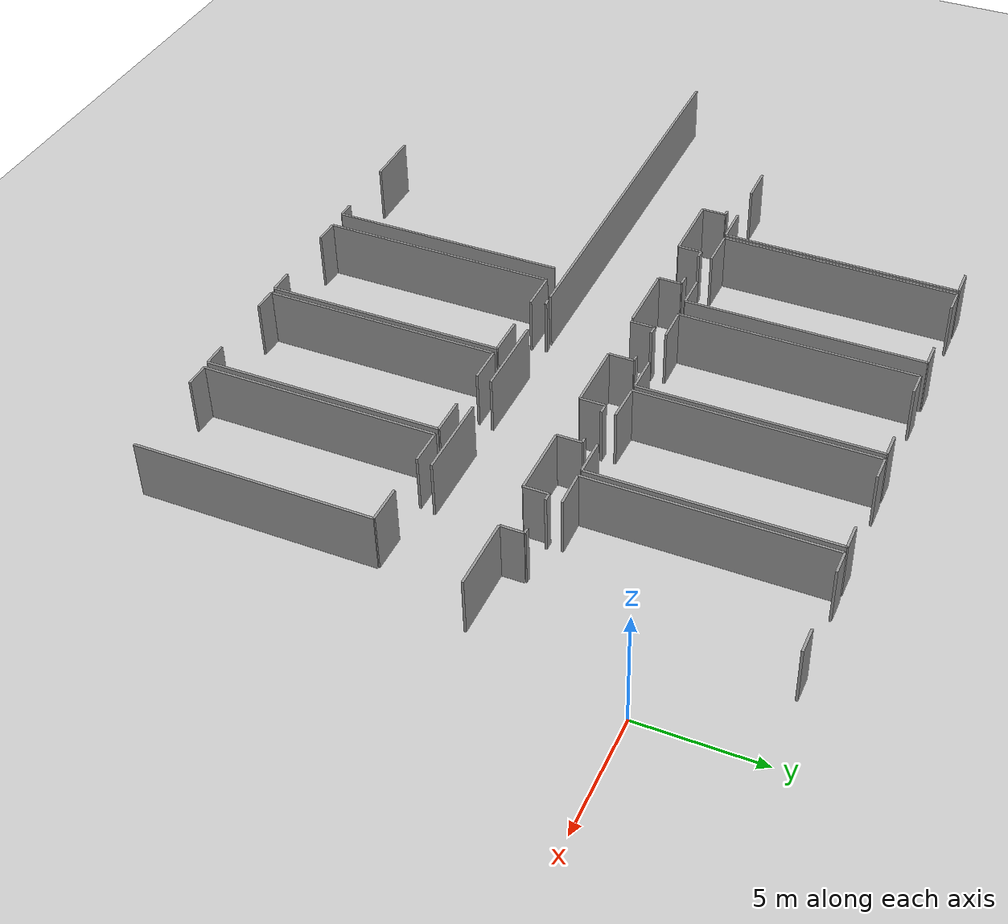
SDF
<sdf version="1.6">
 <world name="default">
  <model name="ground_plane">
   <static>1</static>
   <link name="link">
    <collision name="collision">
     <geometry><plane><normal>0 0 1</normal><size>100 100</size></plane></geometry>
     <surface><friction><ode><mu>100</mu><mu2>50</mu2></ode></friction></surface>
    </collision>
    <visual name="visual">
     <cast_shadows>0</cast_shadows>
     <geometry><plane><normal>0 0 1</normal><size>100 100</size></plane></geometry>
     <material>
      <script><uri>file://media/materials/scripts/gazebo.material</uri><name>Gazebo/Grey</name></script>
     </material>
    </visual>
   </link>
  </model>
  <model name="50055640">
   <static>1</static>
   <link name="Wall_68">
    <collision name="Wall_68_Collision">
     <geometry><box><size>0.287958779633 0.1 2.5</size></box></geometry>
     <pose>0.143979389817 0 1.25 0 0 0</pose>
    </collision>
    <visual name="Wall_68_Visual">
     <pose>0.143979389817 0 1.25 0 0 0</pose>
     <geometry><box><size>0.287958779633 0.1 2.5</size></box></geometry>
     <material>
      <script><uri>file://media/materials/scripts/gazebo.material</uri><name>Gazebo/Grey</name></script>
      <ambient>1 1 1 1</ambient>
     </material>
    </visual>
    <pose>44.7276511498 -26.5159906594 0 0 0 0.0</pose>
   </link>
   <link name="Wall_69">
    <collision name="Wall_69_Collision">
     <geometry><box><size>1.03101680288 0.1 2.5</size></box></geometry>
     <pose>0.515508401442 0 1.25 0 0 0</pose>
    </collision>
    <visual name="Wall_69_Visual">
     <pose>0.515508401442 0 1.25 0 0 0</pose>
     <geometry><box><size>1.03101680288 0.1 2.5</size></box></geometry>
     <material>
      <script><uri>file://media/materials/scripts/gazebo.material</uri><name>Gazebo/Grey</name></script>
      <ambient>1 1 1 1</ambient>
     </material>
    </visual>
    <pose>45.0156099294 -26.5159906594 0 0 0 -1.57079632679</pose>
   </link>
   <link name="Wall_70">
    <collision name="Wall_70_Collision">
     <geometry><box><size>2.96525204325 0.1 2.5</size></box></geometry>
     <pose>1.48262602163 0 1.25 0 0 0</pose>
    </collision>
    <visual name="Wall_70_Visual">
     <pose>1.48262602163 0 1.25 0 0 0</pose>
     <geometry><box><size>2.96525204325 0.1 2.5</size></box></geometry>
     <material>
      <script><uri>file://media/materials/scripts/gazebo.material</uri><name>Gazebo/Grey</name></script>
      <ambient>1 1 1 1</ambient>
     </material>
    </visual>
    <pose>45.0156099294 -27.5470074623 0 0 0 0.0</pose>
   </link>
   <link name="Wall_71">
    <collision name="Wall_71_Collision">
     <geometry><box><size>0.998020204071 0.1 2.5</size></box></geometry>
     <pose>0.499010102036 0 1.25 0 0 0</pose>
    </collision>
    <visual name="Wall_71_Visual">
     <pose>0.499010102036 0 1.25 0 0 0</pose>
     <geometry><box><size>0.998020204071 0.1 2.5</size></box></geometry>
     <material>
      <script><uri>file://media/materials/scripts/gazebo.material</uri><name>Gazebo/Grey</name></script>
      <ambient>1 1 1 1</ambient>
     </material>
    </visual>
    <pose>47.9808619727 -27.5470074623 0 0 0 1.57079632679</pose>
   </link>
   <link name="Wall_72">
    <collision name="Wall_72_Collision">
     <geometry><box><size>0.326285598254 0.1 2.5</size></box></geometry>
     <pose>0.163142799127 0 1.25 0 0 0</pose>
    </collision>
    <visual name="Wall_72_Visual">
     <pose>0.163142799127 0 1.25 0 0 0</pose>
     <geometry><box><size>0.326285598254 0.1 2.5</size></box></geometry>
     <material>
      <script><uri>file://media/materials/scripts/gazebo.material</uri><name>Gazebo/Grey</name></script>
      <ambient>1 1 1 1</ambient>
     </material>
    </visual>
    <pose>47.9808619727 -26.5489872582 0 0 0 0.0</pose>
   </link>
   <link name="Wall_73">
    <collision name="Wall_73_Collision">
     <geometry><box><size>0.479846692726 0.1 2.5</size></box></geometry>
     <pose>0.239923346363 0 1.25 0 0 0</pose>
    </collision>
    <visual name="Wall_73_Visual">
     <pose>0.239923346363 0 1.25 0 0 0</pose>
     <geometry><box><size>0.479846692726 0.1 2.5</size></box></geometry>
     <material>
      <script><uri>file://media/materials/scripts/gazebo.material</uri><name>Gazebo/Grey</name></script>
      <ambient>1 1 1 1</ambient>
     </material>
    </visual>
    <pose>49.8904766739 -26.5489872582 0 0 0 0.0</pose>
   </link>
   <link name="Wall_74">
    <collision name="Wall_74_Collision">
     <geometry><box><size>0.988375044418 0.1 2.5</size></box></geometry>
     <pose>0.494187522209 0 1.25 0 0 0</pose>
    </collision>
    <visual name="Wall_74_Visual">
     <pose>0.494187522209 0 1.25 0 0 0</pose>
     <geometry><box><size>0.988375044418 0.1 2.5</size></box></geometry>
     <material>
      <script><uri>file://media/materials/scripts/gazebo.material</uri><name>Gazebo/Grey</name></script>
      <ambient>1 1 1 1</ambient>
     </material>
    </visual>
    <pose>50.3703233667 -26.5489872582 0 0 0 -1.57079632679</pose>
   </link>
   <link name="Wall_75">
    <collision name="Wall_75_Collision">
     <geometry><box><size>2.92679831464 0.1 2.5</size></box></geometry>
     <pose>1.46339915732 0 1.25 0 0 0</pose>
    </collision>
    <visual name="Wall_75_Visual">
     <pose>1.46339915732 0 1.25 0 0 0</pose>
     <geometry><box><size>2.92679831464 0.1 2.5</size></box></geometry>
     <material>
      <script><uri>file://media/materials/scripts/gazebo.material</uri><name>Gazebo/Grey</name></script>
      <ambient>1 1 1 1</ambient>
     </material>
    </visual>
    <pose>50.3703233667 -27.5373623027 0 0 0 0.0</pose>
   </link>
   <link name="Wall_76">
    <collision name="Wall_76_Collision">
     <geometry><box><size>17.3403472257 0.1 2.5</size></box></geometry>
     <pose>8.67017361287 0 1.25 0 0 0</pose>
    </collision>
    <visual name="Wall_76_Visual">
     <pose>8.67017361287 0 1.25 0 0 0</pose>
     <geometry><box><size>17.3403472257 0.1 2.5</size></box></geometry>
     <material>
      <script><uri>file://media/materials/scripts/gazebo.material</uri><name>Gazebo/Grey</name></script>
      <ambient>1 1 1 1</ambient>
     </material>
    </visual>
    <pose>53.2971216813 -31.1334839332 0 0 0 3.14159265359</pose>
   </link>
   <link name="Wall_114">
    <collision name="Wall_114_Collision">
     <geometry><box><size>1.15932280826 0.1 2.5</size></box></geometry>
     <pose>0.579661404132 0 1.25 0 0 0</pose>
    </collision>
    <visual name="Wall_114_Visual">
     <pose>0.579661404132 0 1.25 0 0 0</pose>
     <geometry><box><size>1.15932280826 0.1 2.5</size></box></geometry>
     <material>
      <script><uri>file://media/materials/scripts/gazebo.material</uri><name>Gazebo/Grey</name></script>
      <ambient>1 1 1 1</ambient>
     </material>
    </visual>
    <pose>45.27882126 -15.9630438093 0 0 0 0.0</pose>
   </link>
   <link name="Wall_115">
    <collision name="Wall_115_Collision">
     <geometry><box><size>10.0395959186 0.1 2.5</size></box></geometry>
     <pose>5.01979795929 0 1.25 0 0 0</pose>
    </collision>
    <visual name="Wall_115_Visual">
     <pose>5.01979795929 0 1.25 0 0 0</pose>
     <geometry><box><size>10.0395959186 0.1 2.5</size></box></geometry>
     <material>
      <script><uri>file://media/materials/scripts/gazebo.material</uri><name>Gazebo/Grey</name></script>
      <ambient>1 1 1 1</ambient>
     </material>
    </visual>
    <pose>46.4381440682 -15.9630438093 0 0 0 -1.57079632679</pose>
   </link>
   <link name="Wall_116">
    <collision name="Wall_116_Collision">
     <geometry><box><size>1.56632316361 0.1 2.5</size></box></geometry>
     <pose>0.783161581806 0 1.25 0 0 0</pose>
    </collision>
    <visual name="Wall_116_Visual">
     <pose>0.783161581806 0 1.25 0 0 0</pose>
     <geometry><box><size>1.56632316361 0.1 2.5</size></box></geometry>
     <material>
      <script><uri>file://media/materials/scripts/gazebo.material</uri><name>Gazebo/Grey</name></script>
      <ambient>1 1 1 1</ambient>
     </material>
    </visual>
    <pose>46.4381440682 -26.0026397279 0 0 0 3.14159265359</pose>
   </link>
   <link name="Wall_117">
    <collision name="Wall_117_Collision">
     <geometry><box><size>1.56304024327 0.1 2.5</size></box></geometry>
     <pose>0.781520121636 0 1.25 0 0 0</pose>
    </collision>
    <visual name="Wall_117_Visual">
     <pose>0.781520121636 0 1.25 0 0 0</pose>
     <geometry><box><size>1.56304024327 0.1 2.5</size></box></geometry>
     <material>
      <script><uri>file://media/materials/scripts/gazebo.material</uri><name>Gazebo/Grey</name></script>
      <ambient>1 1 1 1</ambient>
     </material>
    </visual>
    <pose>43.084293619 -26.0026397279 0 0 0 -3.13696456062</pose>
   </link>
   <link name="Wall_118">
    <collision name="Wall_118_Collision">
     <geometry><box><size>10.0123102696 0.1 2.5</size></box></geometry>
     <pose>5.00615513478 0 1.25 0 0 0</pose>
    </collision>
    <visual name="Wall_118_Visual">
     <pose>5.00615513478 0 1.25 0 0 0</pose>
     <geometry><box><size>10.0123102696 0.1 2.5</size></box></geometry>
     <material>
      <script><uri>file://media/materials/scripts/gazebo.material</uri><name>Gazebo/Grey</name></script>
      <ambient>1 1 1 1</ambient>
     </material>
    </visual>
    <pose>46.6565561704 -25.9828417686 0 0 0 1.57079632679</pose>
   </link>
   <link name="Wall_119">
    <collision name="Wall_119_Collision">
     <geometry><box><size>0.973653484948 0.1 2.5</size></box></geometry>
     <pose>0.486826742474 0 1.25 0 0 0</pose>
    </collision>
    <visual name="Wall_119_Visual">
     <pose>0.486826742474 0 1.25 0 0 0</pose>
     <geometry><box><size>0.973653484948 0.1 2.5</size></box></geometry>
     <material>
      <script><uri>file://media/materials/scripts/gazebo.material</uri><name>Gazebo/Grey</name></script>
      <ambient>1 1 1 1</ambient>
     </material>
    </visual>
    <pose>46.6565561704 -15.9705314991 0 0 0 0.0</pose>
   </link>
   <link name="Wall_120">
    <collision name="Wall_120_Collision">
     <geometry><box><size>1.00398497386 0.1 2.5</size></box></geometry>
     <pose>0.501992486928 0 1.25 0 0 0</pose>
    </collision>
    <visual name="Wall_120_Visual">
     <pose>0.501992486928 0 1.25 0 0 0</pose>
     <geometry><box><size>1.00398497386 0.1 2.5</size></box></geometry>
     <material>
      <script><uri>file://media/materials/scripts/gazebo.material</uri><name>Gazebo/Grey</name></script>
      <ambient>1 1 1 1</ambient>
     </material>
    </visual>
    <pose>50.4064927154 -15.9705314991 0 0 0 0.0</pose>
   </link>
   <link name="Wall_121">
    <collision name="Wall_121_Collision">
     <geometry><box><size>10.027539469 0.1 2.5</size></box></geometry>
     <pose>5.0137697345 0 1.25 0 0 0</pose>
    </collision>
    <visual name="Wall_121_Visual">
     <pose>5.0137697345 0 1.25 0 0 0</pose>
     <geometry><box><size>10.027539469 0.1 2.5</size></box></geometry>
     <material>
      <script><uri>file://media/materials/scripts/gazebo.material</uri><name>Gazebo/Grey</name></script>
      <ambient>1 1 1 1</ambient>
     </material>
    </visual>
    <pose>51.4104776892 -15.9705314991 0 0 0 -1.57079632679</pose>
   </link>
   <link name="Wall_122">
    <collision name="Wall_122_Collision">
     <geometry><box><size>1.4083202193 0.1 2.5</size></box></geometry>
     <pose>0.70416010965 0 1.25 0 0 0</pose>
    </collision>
    <visual name="Wall_122_Visual">
     <pose>0.70416010965 0 1.25 0 0 0</pose>
     <geometry><box><size>1.4083202193 0.1 2.5</size></box></geometry>
     <material>
      <script><uri>file://media/materials/scripts/gazebo.material</uri><name>Gazebo/Grey</name></script>
      <ambient>1 1 1 1</ambient>
     </material>
    </visual>
    <pose>51.4104776892 -25.9980709681 0 0 0 3.14159265359</pose>
   </link>
   <link name="Wall_123">
    <collision name="Wall_123_Collision">
     <geometry><box><size>1.60269177987 0.1 2.5</size></box></geometry>
     <pose>0.801345889936 0 1.25 0 0 0</pose>
    </collision>
    <visual name="Wall_123_Visual">
     <pose>0.801345889936 0 1.25 0 0 0</pose>
     <geometry><box><size>1.60269177987 0.1 2.5</size></box></geometry>
     <material>
      <script><uri>file://media/materials/scripts/gazebo.material</uri><name>Gazebo/Grey</name></script>
      <ambient>1 1 1 1</ambient>
     </material>
    </visual>
    <pose>48.2591755927 -25.9980709681 0 0 0 3.13209024718</pose>
   </link>
   <link name="Wall_127">
    <collision name="Wall_127_Collision">
     <geometry><box><size>9.98756282045 0.1 2.5</size></box></geometry>
     <pose>4.99378141022 0 1.25 0 0 0</pose>
    </collision>
    <visual name="Wall_127_Visual">
     <pose>4.99378141022 0 1.25 0 0 0</pose>
     <geometry><box><size>9.98756282045 0.1 2.5</size></box></geometry>
     <material>
      <script><uri>file://media/materials/scripts/gazebo.material</uri><name>Gazebo/Grey</name></script>
      <ambient>1 1 1 1</ambient>
     </material>
    </visual>
    <pose>51.417965379 -31.7318645617 0 0 0 -1.57079632679</pose>
   </link>
   <link name="Wall_128">
    <collision name="Wall_128_Collision">
     <geometry><box><size>0.704223564648 0.1 2.5</size></box></geometry>
     <pose>0.352111782324 0 1.25 0 0 0</pose>
    </collision>
    <visual name="Wall_128_Visual">
     <pose>0.352111782324 0 1.25 0 0 0</pose>
     <geometry><box><size>0.704223564648 0.1 2.5</size></box></geometry>
     <material>
      <script><uri>file://media/materials/scripts/gazebo.material</uri><name>Gazebo/Grey</name></script>
      <ambient>1 1 1 1</ambient>
     </material>
    </visual>
    <pose>51.417965379 -41.7194273821 0 0 0 3.14159265359</pose>
   </link>
   <link name="Wall_129">
    <collision name="Wall_129_Collision">
     <geometry><box><size>2.34834255546 0.1 2.5</size></box></geometry>
     <pose>1.17417127773 0 1.25 0 0 0</pose>
    </collision>
    <visual name="Wall_129_Visual">
     <pose>1.17417127773 0 1.25 0 0 0</pose>
     <geometry><box><size>2.34834255546 0.1 2.5</size></box></geometry>
     <material>
      <script><uri>file://media/materials/scripts/gazebo.material</uri><name>Gazebo/Grey</name></script>
      <ambient>1 1 1 1</ambient>
     </material>
    </visual>
    <pose>47.8826336362 -41.7194273821 0 0 0 3.14159265359</pose>
   </link>
   <link name="Wall_167">
    <collision name="Wall_167_Collision">
     <geometry><box><size>1.01807198335 0.1 2.5</size></box></geometry>
     <pose>0.509035991675 0 1.25 0 0 0</pose>
    </collision>
    <visual name="Wall_167_Visual">
     <pose>0.509035991675 0 1.25 0 0 0</pose>
     <geometry><box><size>1.01807198335 0.1 2.5</size></box></geometry>
     <material>
      <script><uri>file://media/materials/scripts/gazebo.material</uri><name>Gazebo/Grey</name></script>
      <ambient>1 1 1 1</ambient>
     </material>
    </visual>
    <pose>53.4920554343 -27.5453576324 0 0 0 1.57079632679</pose>
   </link>
   <link name="Wall_168">
    <collision name="Wall_168_Collision">
     <geometry><box><size>0.387583126047 0.1 2.5</size></box></geometry>
     <pose>0.193791563024 0 1.25 0 0 0</pose>
    </collision>
    <visual name="Wall_168_Visual">
     <pose>0.193791563024 0 1.25 0 0 0</pose>
     <geometry><box><size>0.387583126047 0.1 2.5</size></box></geometry>
     <material>
      <script><uri>file://media/materials/scripts/gazebo.material</uri><name>Gazebo/Grey</name></script>
      <ambient>1 1 1 1</ambient>
     </material>
    </visual>
    <pose>53.4920554343 -26.527285649 0 0 0 0.0</pose>
   </link>
   <link name="Wall_169">
    <collision name="Wall_169_Collision">
     <geometry><box><size>0.279201989949 0.1 2.5</size></box></geometry>
     <pose>0.139600994974 0 1.25 0 0 0</pose>
    </collision>
    <visual name="Wall_169_Visual">
     <pose>0.139600994974 0 1.25 0 0 0</pose>
     <geometry><box><size>0.279201989949 0.1 2.5</size></box></geometry>
     <material>
      <script><uri>file://media/materials/scripts/gazebo.material</uri><name>Gazebo/Grey</name></script>
      <ambient>1 1 1 1</ambient>
     </material>
    </visual>
    <pose>55.4525610437 -26.527285649 0 0 0 0.0</pose>
   </link>
   <link name="Wall_170">
    <collision name="Wall_170_Collision">
     <geometry><box><size>1.05474897203 0.1 2.5</size></box></geometry>
     <pose>0.527374486015 0 1.25 0 0 0</pose>
    </collision>
    <visual name="Wall_170_Visual">
     <pose>0.527374486015 0 1.25 0 0 0</pose>
     <geometry><box><size>1.05474897203 0.1 2.5</size></box></geometry>
     <material>
      <script><uri>file://media/materials/scripts/gazebo.material</uri><name>Gazebo/Grey</name></script>
      <ambient>1 1 1 1</ambient>
     </material>
    </visual>
    <pose>55.7317630337 -26.527285649 0 0 0 -1.57079632679</pose>
   </link>
   <link name="Wall_171">
    <collision name="Wall_171_Collision">
     <geometry><box><size>2.89354789583 0.1 2.5</size></box></geometry>
     <pose>1.44677394792 0 1.25 0 0 0</pose>
    </collision>
    <visual name="Wall_171_Visual">
     <pose>1.44677394792 0 1.25 0 0 0</pose>
     <geometry><box><size>2.89354789583 0.1 2.5</size></box></geometry>
     <material>
      <script><uri>file://media/materials/scripts/gazebo.material</uri><name>Gazebo/Grey</name></script>
      <ambient>1 1 1 1</ambient>
     </material>
    </visual>
    <pose>55.7317630337 -27.582034621 0 0 0 0.0</pose>
   </link>
   <link name="Wall_172">
    <collision name="Wall_172_Collision">
     <geometry><box><size>1.04066196254 0.1 2.5</size></box></geometry>
     <pose>0.520330981268 0 1.25 0 0 0</pose>
    </collision>
    <visual name="Wall_172_Visual">
     <pose>0.520330981268 0 1.25 0 0 0</pose>
     <geometry><box><size>1.04066196254 0.1 2.5</size></box></geometry>
     <material>
      <script><uri>file://media/materials/scripts/gazebo.material</uri><name>Gazebo/Grey</name></script>
      <ambient>1 1 1 1</ambient>
     </material>
    </visual>
    <pose>58.6253109295 -27.582034621 0 0 0 1.57079632679</pose>
   </link>
   <link name="Wall_173">
    <collision name="Wall_173_Collision">
     <geometry><box><size>0.417660794964 0.1 2.5</size></box></geometry>
     <pose>0.208830397482 0 1.25 0 0 0</pose>
    </collision>
    <visual name="Wall_173_Visual">
     <pose>0.208830397482 0 1.25 0 0 0</pose>
     <geometry><box><size>0.417660794964 0.1 2.5</size></box></geometry>
     <material>
      <script><uri>file://media/materials/scripts/gazebo.material</uri><name>Gazebo/Grey</name></script>
      <ambient>1 1 1 1</ambient>
     </material>
    </visual>
    <pose>58.6253109295 -26.5413726585 0 0 0 0.0</pose>
   </link>
   <link name="Wall_174">
    <collision name="Wall_174_Collision">
     <geometry><box><size>0.241128991319 0.1 2.5</size></box></geometry>
     <pose>0.12056449566 0 1.25 0 0 0</pose>
    </collision>
    <visual name="Wall_174_Visual">
     <pose>0.12056449566 0 1.25 0 0 0</pose>
     <geometry><box><size>0.241128991319 0.1 2.5</size></box></geometry>
     <material>
      <script><uri>file://media/materials/scripts/gazebo.material</uri><name>Gazebo/Grey</name></script>
      <ambient>1 1 1 1</ambient>
     </material>
    </visual>
    <pose>60.6431798568 -26.5413726585 0 0 0 0.0</pose>
   </link>
   <link name="Wall_175">
    <collision name="Wall_175_Collision">
     <geometry><box><size>1.04066196254 0.1 2.5</size></box></geometry>
     <pose>0.520330981268 0 1.25 0 0 0</pose>
    </collision>
    <visual name="Wall_175_Visual">
     <pose>0.520330981268 0 1.25 0 0 0</pose>
     <geometry><box><size>1.04066196254 0.1 2.5</size></box></geometry>
     <material>
      <script><uri>file://media/materials/scripts/gazebo.material</uri><name>Gazebo/Grey</name></script>
      <ambient>1 1 1 1</ambient>
     </material>
    </visual>
    <pose>60.8843088482 -26.5413726585 0 0 0 -1.57079632679</pose>
   </link>
   <link name="Wall_176">
    <collision name="Wall_176_Collision">
     <geometry><box><size>2.99507589218 0.1 2.5</size></box></geometry>
     <pose>1.49753794609 0 1.25 0 0 0</pose>
    </collision>
    <visual name="Wall_176_Visual">
     <pose>1.49753794609 0 1.25 0 0 0</pose>
     <geometry><box><size>2.99507589218 0.1 2.5</size></box></geometry>
     <material>
      <script><uri>file://media/materials/scripts/gazebo.material</uri><name>Gazebo/Grey</name></script>
      <ambient>1 1 1 1</ambient>
     </material>
    </visual>
    <pose>60.8843088482 -27.582034621 0 0 0 0.0</pose>
   </link>
   <link name="Wall_177">
    <collision name="Wall_177_Collision">
     <geometry><box><size>1.01527996345 0.1 2.5</size></box></geometry>
     <pose>0.507639981725 0 1.25 0 0 0</pose>
    </collision>
    <visual name="Wall_177_Visual">
     <pose>0.507639981725 0 1.25 0 0 0</pose>
     <geometry><box><size>1.01527996345 0.1 2.5</size></box></geometry>
     <material>
      <script><uri>file://media/materials/scripts/gazebo.material</uri><name>Gazebo/Grey</name></script>
      <ambient>1 1 1 1</ambient>
     </material>
    </visual>
    <pose>63.8793847403 -27.582034621 0 0 0 1.57079632679</pose>
   </link>
   <link name="Wall_178">
    <collision name="Wall_178_Collision">
     <geometry><box><size>0.329965988121 0.1 2.5</size></box></geometry>
     <pose>0.164982994061 0 1.25 0 0 0</pose>
    </collision>
    <visual name="Wall_178_Visual">
     <pose>0.164982994061 0 1.25 0 0 0</pose>
     <geometry><box><size>0.329965988121 0.1 2.5</size></box></geometry>
     <material>
      <script><uri>file://media/materials/scripts/gazebo.material</uri><name>Gazebo/Grey</name></script>
      <ambient>1 1 1 1</ambient>
     </material>
    </visual>
    <pose>63.8793847403 -26.5667546576 0 0 0 0.0</pose>
   </link>
   <link name="Wall_179">
    <collision name="Wall_179_Collision">
     <geometry><box><size>0.24277882126 0.1 2.5</size></box></geometry>
     <pose>0.12138941063 0 1.25 0 0 0</pose>
    </collision>
    <visual name="Wall_179_Visual">
     <pose>0.12138941063 0 1.25 0 0 0</pose>
     <geometry><box><size>0.24277882126 0.1 2.5</size></box></geometry>
     <material>
      <script><uri>file://media/materials/scripts/gazebo.material</uri><name>Gazebo/Grey</name></script>
      <ambient>1 1 1 1</ambient>
     </material>
    </visual>
    <pose>65.7736433321 -26.5667546576 0 0 0 0.0</pose>
   </link>
   <link name="Wall_180">
    <collision name="Wall_180_Collision">
     <geometry><box><size>0.978349154779 0.1 2.5</size></box></geometry>
     <pose>0.48917457739 0 1.25 0 0 0</pose>
    </collision>
    <visual name="Wall_180_Visual">
     <pose>0.48917457739 0 1.25 0 0 0</pose>
     <geometry><box><size>0.978349154779 0.1 2.5</size></box></geometry>
     <material>
      <script><uri>file://media/materials/scripts/gazebo.material</uri><name>Gazebo/Grey</name></script>
      <ambient>1 1 1 1</ambient>
     </material>
    </visual>
    <pose>66.0164221534 -26.5667546576 0 0 0 -1.57079632679</pose>
   </link>
   <link name="Wall_181">
    <collision name="Wall_181_Collision">
     <geometry><box><size>2.97959287273 0.1 2.5</size></box></geometry>
     <pose>1.48979643637 0 1.25 0 0 0</pose>
    </collision>
    <visual name="Wall_181_Visual">
     <pose>1.48979643637 0 1.25 0 0 0</pose>
     <geometry><box><size>2.97959287273 0.1 2.5</size></box></geometry>
     <material>
      <script><uri>file://media/materials/scripts/gazebo.material</uri><name>Gazebo/Grey</name></script>
      <ambient>1 1 1 1</ambient>
     </material>
    </visual>
    <pose>66.0164221534 -27.5451038124 0 0 0 0.0</pose>
   </link>
   <link name="Wall_213">
    <collision name="Wall_213_Collision">
     <geometry><box><size>3.53139753287 0.1 2.5</size></box></geometry>
     <pose>1.76569876643 0 1.25 0 0 0</pose>
    </collision>
    <visual name="Wall_213_Visual">
     <pose>1.76569876643 0 1.25 0 0 0</pose>
     <geometry><box><size>3.53139753287 0.1 2.5</size></box></geometry>
     <material>
      <script><uri>file://media/materials/scripts/gazebo.material</uri><name>Gazebo/Grey</name></script>
      <ambient>1 1 1 1</ambient>
     </material>
    </visual>
    <pose>64.1844763694 -31.1096248541 0 0 0 3.14159265359</pose>
   </link>
   <link name="Wall_214">
    <collision name="Wall_214_Collision">
     <geometry><box><size>3.4834255546 0.1 2.5</size></box></geometry>
     <pose>1.7417127773 0 1.25 0 0 0</pose>
    </collision>
    <visual name="Wall_214_Visual">
     <pose>1.7417127773 0 1.25 0 0 0</pose>
     <geometry><box><size>3.4834255546 0.1 2.5</size></box></geometry>
     <material>
      <script><uri>file://media/materials/scripts/gazebo.material</uri><name>Gazebo/Grey</name></script>
      <ambient>1 1 1 1</ambient>
     </material>
    </visual>
    <pose>59.0644195137 -31.1096248541 0 0 0 3.14159265359</pose>
   </link>
   <link name="Wall_215">
    <collision name="Wall_215_Collision">
     <geometry><box><size>0.315962562965 0.1 2.5</size></box></geometry>
     <pose>0.157981281482 0 1.25 0 0 0</pose>
    </collision>
    <visual name="Wall_215_Visual">
     <pose>0.157981281482 0 1.25 0 0 0</pose>
     <geometry><box><size>0.315962562965 0.1 2.5</size></box></geometry>
     <material>
      <script><uri>file://media/materials/scripts/gazebo.material</uri><name>Gazebo/Grey</name></script>
      <ambient>1 1 1 1</ambient>
     </material>
    </visual>
    <pose>53.805776943 -31.1096248541 0 0 0 -3.02241895983</pose>
   </link>
   <link name="Wall_216">
    <collision name="Wall_216_Collision">
     <geometry><box><size>9.93679882228 0.1 2.5</size></box></geometry>
     <pose>4.96839941114 0 1.25 0 0 0</pose>
    </collision>
    <visual name="Wall_216_Visual">
     <pose>4.96839941114 0 1.25 0 0 0</pose>
     <geometry><box><size>9.93679882228 0.1 2.5</size></box></geometry>
     <material>
      <script><uri>file://media/materials/scripts/gazebo.material</uri><name>Gazebo/Grey</name></script>
      <ambient>1 1 1 1</ambient>
     </material>
    </visual>
    <pose>52.3159805066 -25.9550484796 0 0 0 1.57079632679</pose>
   </link>
   <link name="Wall_217">
    <collision name="Wall_217_Collision">
     <geometry><box><size>0.99472054419 0.1 2.5</size></box></geometry>
     <pose>0.497360272095 0 1.25 0 0 0</pose>
    </collision>
    <visual name="Wall_217_Visual">
     <pose>0.497360272095 0 1.25 0 0 0</pose>
     <geometry><box><size>0.99472054419 0.1 2.5</size></box></geometry>
     <material>
      <script><uri>file://media/materials/scripts/gazebo.material</uri><name>Gazebo/Grey</name></script>
      <ambient>1 1 1 1</ambient>
     </material>
    </visual>
    <pose>52.3159805066 -16.0182496573 0 0 0 0.0</pose>
   </link>
   <link name="Wall_218">
    <collision name="Wall_218_Collision">
     <geometry><box><size>1.03038225291 0.1 2.5</size></box></geometry>
     <pose>0.515191126453 0 1.25 0 0 0</pose>
    </collision>
    <visual name="Wall_218_Visual">
     <pose>0.515191126453 0 1.25 0 0 0</pose>
     <geometry><box><size>1.03038225291 0.1 2.5</size></box></geometry>
     <material>
      <script><uri>file://media/materials/scripts/gazebo.material</uri><name>Gazebo/Grey</name></script>
      <ambient>1 1 1 1</ambient>
     </material>
    </visual>
    <pose>56.1042438702 -16.0182496573 0 0 0 0.0</pose>
   </link>
   <link name="Wall_219">
    <collision name="Wall_219_Collision">
     <geometry><box><size>9.91915833291 0.1 2.5</size></box></geometry>
     <pose>4.95957916646 0 1.25 0 0 0</pose>
    </collision>
    <visual name="Wall_219_Visual">
     <pose>4.95957916646 0 1.25 0 0 0</pose>
     <geometry><box><size>9.91915833291 0.1 2.5</size></box></geometry>
     <material>
      <script><uri>file://media/materials/scripts/gazebo.material</uri><name>Gazebo/Grey</name></script>
      <ambient>1 1 1 1</ambient>
     </material>
    </visual>
    <pose>57.1346261232 -16.0182496573 0 0 0 -1.57079632679</pose>
   </link>
   <link name="Wall_220">
    <collision name="Wall_220_Collision">
     <geometry><box><size>1.54550992436 0.1 2.5</size></box></geometry>
     <pose>0.772754962181 0 1.25 0 0 0</pose>
    </collision>
    <visual name="Wall_220_Visual">
     <pose>0.772754962181 0 1.25 0 0 0</pose>
     <geometry><box><size>1.54550992436 0.1 2.5</size></box></geometry>
     <material>
      <script><uri>file://media/materials/scripts/gazebo.material</uri><name>Gazebo/Grey</name></script>
      <ambient>1 1 1 1</ambient>
     </material>
    </visual>
    <pose>57.1346261232 -25.9374079903 0 0 0 3.14159265359</pose>
   </link>
   <link name="Wall_221">
    <collision name="Wall_221_Collision">
     <geometry><box><size>1.47302303941 0.1 2.5</size></box></geometry>
     <pose>0.736511519705 0 1.25 0 0 0</pose>
    </collision>
    <visual name="Wall_221_Visual">
     <pose>0.736511519705 0 1.25 0 0 0</pose>
     <geometry><box><size>1.47302303941 0.1 2.5</size></box></geometry>
     <material>
      <script><uri>file://media/materials/scripts/gazebo.material</uri><name>Gazebo/Grey</name></script>
      <ambient>1 1 1 1</ambient>
     </material>
    </visual>
    <pose>53.7888979136 -25.9374079903 0 0 0 -3.12961666233</pose>
   </link>
   <link name="Wall_222">
    <collision name="Wall_222_Collision">
     <geometry><box><size>9.93083405249 0.1 2.5</size></box></geometry>
     <pose>4.96541702624 0 1.25 0 0 0</pose>
    </collision>
    <visual name="Wall_222_Visual">
     <pose>4.96541702624 0 1.25 0 0 0</pose>
     <geometry><box><size>9.93083405249 0.1 2.5</size></box></geometry>
     <material>
      <script><uri>file://media/materials/scripts/gazebo.material</uri><name>Gazebo/Grey</name></script>
      <ambient>1 1 1 1</ambient>
     </material>
    </visual>
    <pose>57.417635413 -25.94311894 0 0 0 1.57079632679</pose>
   </link>
   <link name="Wall_223">
    <collision name="Wall_223_Collision">
     <geometry><box><size>1.03038225291 0.1 2.5</size></box></geometry>
     <pose>0.515191126453 0 1.25 0 0 0</pose>
    </collision>
    <visual name="Wall_223_Visual">
     <pose>0.515191126453 0 1.25 0 0 0</pose>
     <geometry><box><size>1.03038225291 0.1 2.5</size></box></geometry>
     <material>
      <script><uri>file://media/materials/scripts/gazebo.material</uri><name>Gazebo/Grey</name></script>
      <ambient>1 1 1 1</ambient>
     </material>
    </visual>
    <pose>57.417635413 -16.0122848876 0 0 0 0.0</pose>
   </link>
   <link name="Wall_224">
    <collision name="Wall_224_Collision">
     <geometry><box><size>1.07391238134 0.1 2.5</size></box></geometry>
     <pose>0.53695619067 0 1.25 0 0 0</pose>
    </collision>
    <visual name="Wall_224_Visual">
     <pose>0.53695619067 0 1.25 0 0 0</pose>
     <geometry><box><size>1.07391238134 0.1 2.5</size></box></geometry>
     <material>
      <script><uri>file://media/materials/scripts/gazebo.material</uri><name>Gazebo/Grey</name></script>
      <ambient>1 1 1 1</ambient>
     </material>
    </visual>
    <pose>61.2126250063 -16.0122848876 0 0 0 0.0</pose>
   </link>
   <link name="Wall_225">
    <collision name="Wall_225_Collision">
     <geometry><box><size>9.96421138129 0.1 2.5</size></box></geometry>
     <pose>4.98210569064 0 1.25 0 0 0</pose>
    </collision>
    <visual name="Wall_225_Visual">
     <pose>4.98210569064 0 1.25 0 0 0</pose>
     <geometry><box><size>9.96421138129 0.1 2.5</size></box></geometry>
     <material>
      <script><uri>file://media/materials/scripts/gazebo.material</uri><name>Gazebo/Grey</name></script>
      <ambient>1 1 1 1</ambient>
     </material>
    </visual>
    <pose>62.2865373877 -16.0122848876 0 0 0 -1.57079632679</pose>
   </link>
   <link name="Wall_226">
    <collision name="Wall_226_Collision">
     <geometry><box><size>1.52266612518 0.1 2.5</size></box></geometry>
     <pose>0.761333062592 0 1.25 0 0 0</pose>
    </collision>
    <visual name="Wall_226_Visual">
     <pose>0.761333062592 0 1.25 0 0 0</pose>
     <geometry><box><size>1.52266612518 0.1 2.5</size></box></geometry>
     <material>
      <script><uri>file://media/materials/scripts/gazebo.material</uri><name>Gazebo/Grey</name></script>
      <ambient>1 1 1 1</ambient>
     </material>
    </visual>
    <pose>62.2865373877 -25.9764962688 0 0 0 3.14159265359</pose>
   </link>
   <link name="Wall_227">
    <collision name="Wall_227_Collision">
     <geometry><box><size>1.56947013517 0.1 2.5</size></box></geometry>
     <pose>0.784735067587 0 1.25 0 0 0</pose>
    </collision>
    <visual name="Wall_227_Visual">
     <pose>0.784735067587 0 1.25 0 0 0</pose>
     <geometry><box><size>1.56947013517 0.1 2.5</size></box></geometry>
     <material>
      <script><uri>file://media/materials/scripts/gazebo.material</uri><name>Gazebo/Grey</name></script>
      <ambient>1 1 1 1</ambient>
     </material>
    </visual>
    <pose>58.9867505965 -25.9764962688 0 0 0 3.12032442778</pose>
   </link>
   <link name="Wall_228">
    <collision name="Wall_228_Collision">
     <geometry><box><size>9.99086248033 0.1 2.5</size></box></geometry>
     <pose>4.99543124016 0 1.25 0 0 0</pose>
    </collision>
    <visual name="Wall_228_Visual">
     <pose>4.99543124016 0 1.25 0 0 0</pose>
     <geometry><box><size>9.99086248033 0.1 2.5</size></box></geometry>
     <material>
      <script><uri>file://media/materials/scripts/gazebo.material</uri><name>Gazebo/Grey</name></script>
      <ambient>1 1 1 1</ambient>
     </material>
    </visual>
    <pose>62.5849027869 -25.9956596782 0 0 0 1.57079632679</pose>
   </link>
   <link name="Wall_229">
    <collision name="Wall_229_Collision">
     <geometry><box><size>0.991040154323 0.1 2.5</size></box></geometry>
     <pose>0.495520077161 0 1.25 0 0 0</pose>
    </collision>
    <visual name="Wall_229_Visual">
     <pose>0.495520077161 0 1.25 0 0 0</pose>
     <geometry><box><size>0.991040154323 0.1 2.5</size></box></geometry>
     <material>
      <script><uri>file://media/materials/scripts/gazebo.material</uri><name>Gazebo/Grey</name></script>
      <ambient>1 1 1 1</ambient>
     </material>
    </visual>
    <pose>62.5849027869 -16.0047971978 0 0 0 0.0</pose>
   </link>
   <link name="Wall_230">
    <collision name="Wall_230_Collision">
     <geometry><box><size>1.05144931215 0.1 2.5</size></box></geometry>
     <pose>0.525724656074 0 1.25 0 0 0</pose>
    </collision>
    <visual name="Wall_230_Visual">
     <pose>0.525724656074 0 1.25 0 0 0</pose>
     <geometry><box><size>1.05144931215 0.1 2.5</size></box></geometry>
     <material>
      <script><uri>file://media/materials/scripts/gazebo.material</uri><name>Gazebo/Grey</name></script>
      <ambient>1 1 1 1</ambient>
     </material>
    </visual>
    <pose>66.3963906797 -16.0047971978 0 0 0 0.0</pose>
   </link>
   <link name="Wall_233">
    <collision name="Wall_233_Collision">
     <geometry><box><size>1.52319000685 0.1 2.5</size></box></geometry>
     <pose>0.761595003426 0 1.25 0 0 0</pose>
    </collision>
    <visual name="Wall_233_Visual">
     <pose>0.761595003426 0 1.25 0 0 0</pose>
     <geometry><box><size>1.52319000685 0.1 2.5</size></box></geometry>
     <material>
      <script><uri>file://media/materials/scripts/gazebo.material</uri><name>Gazebo/Grey</name></script>
      <ambient>1 1 1 1</ambient>
     </material>
    </visual>
    <pose>64.1078227321 -25.9669780192 0 0 0 -3.12276154648</pose>
   </link>
   <link name="Wall_294">
    <collision name="Wall_294_Collision">
     <geometry><box><size>9.92461546271 0.1 2.5</size></box></geometry>
     <pose>4.96230773136 0 1.25 0 0 0</pose>
    </collision>
    <visual name="Wall_294_Visual">
     <pose>4.96230773136 0 1.25 0 0 0</pose>
     <geometry><box><size>9.92461546271 0.1 2.5</size></box></geometry>
     <material>
      <script><uri>file://media/materials/scripts/gazebo.material</uri><name>Gazebo/Grey</name></script>
      <ambient>1 1 1 1</ambient>
     </material>
    </visual>
    <pose>62.5975937865 -41.6690441139 0 0 0 1.57079632679</pose>
   </link>
   <link name="Wall_295">
    <collision name="Wall_295_Collision">
     <geometry><box><size>1.49512665618 0.1 2.5</size></box></geometry>
     <pose>0.747563328088 0 1.25 0 0 0</pose>
    </collision>
    <visual name="Wall_295_Visual">
     <pose>0.747563328088 0 1.25 0 0 0</pose>
     <geometry><box><size>1.49512665618 0.1 2.5</size></box></geometry>
     <material>
      <script><uri>file://media/materials/scripts/gazebo.material</uri><name>Gazebo/Grey</name></script>
      <ambient>1 1 1 1</ambient>
     </material>
    </visual>
    <pose>62.5975937865 -31.7444286512 0 0 0 0.0</pose>
   </link>
   <link name="Wall_296">
    <collision name="Wall_296_Collision">
     <geometry><box><size>1.56708462358 0.1 2.5</size></box></geometry>
     <pose>0.783542311792 0 1.25 0 0 0</pose>
    </collision>
    <visual name="Wall_296_Visual">
     <pose>0.783542311792 0 1.25 0 0 0</pose>
     <geometry><box><size>1.56708462358 0.1 2.5</size></box></geometry>
     <material>
      <script><uri>file://media/materials/scripts/gazebo.material</uri><name>Gazebo/Grey</name></script>
      <ambient>1 1 1 1</ambient>
     </material>
    </visual>
    <pose>65.861972689 -31.7444286512 0 0 0 0.0</pose>
   </link>
   <link name="Wall_297">
    <collision name="Wall_297_Collision">
     <geometry><box><size>9.95697751155 0.1 2.5</size></box></geometry>
     <pose>4.97848875577 0 1.25 0 0 0</pose>
    </collision>
    <visual name="Wall_297_Visual">
     <pose>4.97848875577 0 1.25 0 0 0</pose>
     <geometry><box><size>9.95697751155 0.1 2.5</size></box></geometry>
     <material>
      <script><uri>file://media/materials/scripts/gazebo.material</uri><name>Gazebo/Grey</name></script>
      <ambient>1 1 1 1</ambient>
     </material>
    </visual>
    <pose>67.4290573126 -31.7444286512 0 0 0 -1.57079632679</pose>
   </link>
   <link name="Wall_299">
    <collision name="Wall_299_Collision">
     <geometry><box><size>1.0173177507 0.1 2.5</size></box></geometry>
     <pose>0.508658875349 0 1.25 0 0 0</pose>
    </collision>
    <visual name="Wall_299_Visual">
     <pose>0.508658875349 0 1.25 0 0 0</pose>
     <geometry><box><size>1.0173177507 0.1 2.5</size></box></geometry>
     <material>
      <script><uri>file://media/materials/scripts/gazebo.material</uri><name>Gazebo/Grey</name></script>
      <ambient>1 1 1 1</ambient>
     </material>
    </visual>
    <pose>63.6143966699 -41.7014061627 0 0 0 3.10977613468</pose>
   </link>
   <link name="Wall_300">
    <collision name="Wall_300_Collision">
     <geometry><box><size>9.94974364181 0.1 2.5</size></box></geometry>
     <pose>4.9748718209 0 1.25 0 0 0</pose>
    </collision>
    <visual name="Wall_300_Visual">
     <pose>4.9748718209 0 1.25 0 0 0</pose>
     <geometry><box><size>9.94974364181 0.1 2.5</size></box></geometry>
     <material>
      <script><uri>file://media/materials/scripts/gazebo.material</uri><name>Gazebo/Grey</name></script>
      <ambient>1 1 1 1</ambient>
     </material>
    </visual>
    <pose>57.445047972 -41.694426113 0 0 0 1.57079632679</pose>
   </link>
   <link name="Wall_301">
    <collision name="Wall_301_Collision">
     <geometry><box><size>1.51962028529 0.1 2.5</size></box></geometry>
     <pose>0.759810142647 0 1.25 0 0 0</pose>
    </collision>
    <visual name="Wall_301_Visual">
     <pose>0.759810142647 0 1.25 0 0 0</pose>
     <geometry><box><size>1.51962028529 0.1 2.5</size></box></geometry>
     <material>
      <script><uri>file://media/materials/scripts/gazebo.material</uri><name>Gazebo/Grey</name></script>
      <ambient>1 1 1 1</ambient>
     </material>
    </visual>
    <pose>57.445047972 -31.7446824712 0 0 0 0.0</pose>
   </link>
   <link name="Wall_302">
    <collision name="Wall_302_Collision">
     <geometry><box><size>1.56162749378 0.1 2.5</size></box></geometry>
     <pose>0.780813746891 0 1.25 0 0 0</pose>
    </collision>
    <visual name="Wall_302_Visual">
     <pose>0.780813746891 0 1.25 0 0 0</pose>
     <geometry><box><size>1.56162749378 0.1 2.5</size></box></geometry>
     <material>
      <script><uri>file://media/materials/scripts/gazebo.material</uri><name>Gazebo/Grey</name></script>
      <ambient>1 1 1 1</ambient>
     </material>
    </visual>
    <pose>60.722498604 -31.7446824712 0 0 0 0.0</pose>
   </link>
   <link name="Wall_303">
    <collision name="Wall_303_Collision">
     <geometry><box><size>9.97017615107 0.1 2.5</size></box></geometry>
     <pose>4.98508807554 0 1.25 0 0 0</pose>
    </collision>
    <visual name="Wall_303_Visual">
     <pose>4.98508807554 0 1.25 0 0 0</pose>
     <geometry><box><size>9.97017615107 0.1 2.5</size></box></geometry>
     <material>
      <script><uri>file://media/materials/scripts/gazebo.material</uri><name>Gazebo/Grey</name></script>
      <ambient>1 1 1 1</ambient>
     </material>
    </visual>
    <pose>62.2841260978 -31.7446824712 0 0 0 -1.57079632679</pose>
   </link>
   <link name="Wall_304">
    <collision name="Wall_304_Collision">
     <geometry><box><size>1.02403675313 0.1 2.5</size></box></geometry>
     <pose>0.512018376567 0 1.25 0 0 0</pose>
    </collision>
    <visual name="Wall_304_Visual">
     <pose>0.512018376567 0 1.25 0 0 0</pose>
     <geometry><box><size>1.02403675313 0.1 2.5</size></box></geometry>
     <material>
      <script><uri>file://media/materials/scripts/gazebo.material</uri><name>Gazebo/Grey</name></script>
      <ambient>1 1 1 1</ambient>
     </material>
    </visual>
    <pose>62.2841260978 -41.7148586223 0 0 0 3.14159265359</pose>
   </link>
   <link name="Wall_305">
    <collision name="Wall_305_Collision">
     <geometry><box><size>1.00317779795 0.1 2.5</size></box></geometry>
     <pose>0.501588898976 0 1.25 0 0 0</pose>
    </collision>
    <visual name="Wall_305_Visual">
     <pose>0.501588898976 0 1.25 0 0 0</pose>
     <geometry><box><size>1.00317779795 0.1 2.5</size></box></geometry>
     <material>
      <script><uri>file://media/materials/scripts/gazebo.material</uri><name>Gazebo/Grey</name></script>
      <ambient>1 1 1 1</ambient>
     </material>
    </visual>
    <pose>58.4480176659 -41.7148586223 0 0 0 3.12122346052</pose>
   </link>
   <link name="Wall_306">
    <collision name="Wall_306_Collision">
     <geometry><box><size>9.95748515153 0.1 2.5</size></box></geometry>
     <pose>4.97874257577 0 1.25 0 0 0</pose>
    </collision>
    <visual name="Wall_306_Visual">
     <pose>4.97874257577 0 1.25 0 0 0</pose>
     <geometry><box><size>9.95748515153 0.1 2.5</size></box></geometry>
     <material>
      <script><uri>file://media/materials/scripts/gazebo.material</uri><name>Gazebo/Grey</name></script>
      <ambient>1 1 1 1</ambient>
     </material>
    </visual>
    <pose>52.2895832276 -41.6917610031 0 0 0 1.57079632679</pose>
   </link>
   <link name="Wall_307">
    <collision name="Wall_307_Collision">
     <geometry><box><size>1.62343266156 0.1 2.5</size></box></geometry>
     <pose>0.811716330778 0 1.25 0 0 0</pose>
    </collision>
    <visual name="Wall_307_Visual">
     <pose>0.811716330778 0 1.25 0 0 0</pose>
     <geometry><box><size>1.62343266156 0.1 2.5</size></box></geometry>
     <material>
      <script><uri>file://media/materials/scripts/gazebo.material</uri><name>Gazebo/Grey</name></script>
      <ambient>1 1 1 1</ambient>
     </material>
    </visual>
    <pose>52.2895832276 -31.7342758516 0 0 0 0.0</pose>
   </link>
   <link name="Wall_308">
    <collision name="Wall_308_Collision">
     <geometry><box><size>1.66886643992 0.1 2.5</size></box></geometry>
     <pose>0.83443321996 0 1.25 0 0 0</pose>
    </collision>
    <visual name="Wall_308_Visual">
     <pose>0.83443321996 0 1.25 0 0 0</pose>
     <geometry><box><size>1.66886643992 0.1 2.5</size></box></geometry>
     <material>
      <script><uri>file://media/materials/scripts/gazebo.material</uri><name>Gazebo/Grey</name></script>
      <ambient>1 1 1 1</ambient>
     </material>
    </visual>
    <pose>55.473374283 -31.7342758516 0 0 0 0.0</pose>
   </link>
   <link name="Wall_309">
    <collision name="Wall_309_Collision">
     <geometry><box><size>9.98845119042 0.1 2.5</size></box></geometry>
     <pose>4.99422559521 0 1.25 0 0 0</pose>
    </collision>
    <visual name="Wall_309_Visual">
     <pose>4.99422559521 0 1.25 0 0 0</pose>
     <geometry><box><size>9.98845119042 0.1 2.5</size></box></geometry>
     <material>
      <script><uri>file://media/materials/scripts/gazebo.material</uri><name>Gazebo/Grey</name></script>
      <ambient>1 1 1 1</ambient>
     </material>
    </visual>
    <pose>57.1422407229 -31.7342758516 0 0 0 -1.57079632679</pose>
   </link>
   <link name="Wall_310">
    <collision name="Wall_310_Collision">
     <geometry><box><size>1.03469719275 0.1 2.5</size></box></geometry>
     <pose>0.517348596375 0 1.25 0 0 0</pose>
    </collision>
    <visual name="Wall_310_Visual">
     <pose>0.517348596375 0 1.25 0 0 0</pose>
     <geometry><box><size>1.03469719275 0.1 2.5</size></box></geometry>
     <material>
      <script><uri>file://media/materials/scripts/gazebo.material</uri><name>Gazebo/Grey</name></script>
      <ambient>1 1 1 1</ambient>
     </material>
    </visual>
    <pose>57.1422407229 -41.722727042 0 0 0 3.14159265359</pose>
   </link>
   <link name="Wall_311">
    <collision name="Wall_311_Collision">
     <geometry><box><size>1.03972718334 0.1 2.5</size></box></geometry>
     <pose>0.519863591668 0 1.25 0 0 0</pose>
    </collision>
    <visual name="Wall_311_Visual">
     <pose>0.519863591668 0 1.25 0 0 0</pose>
     <geometry><box><size>1.03972718334 0.1 2.5</size></box></geometry>
     <material>
      <script><uri>file://media/materials/scripts/gazebo.material</uri><name>Gazebo/Grey</name></script>
      <ambient>1 1 1 1</ambient>
     </material>
    </visual>
    <pose>53.3288491802 -41.722727042 0 0 0 3.11180539871</pose>
   </link>
   <pose>-70.4 20.8977283111 0 0 0 0</pose>
  </model>
 </world>
</sdf>
